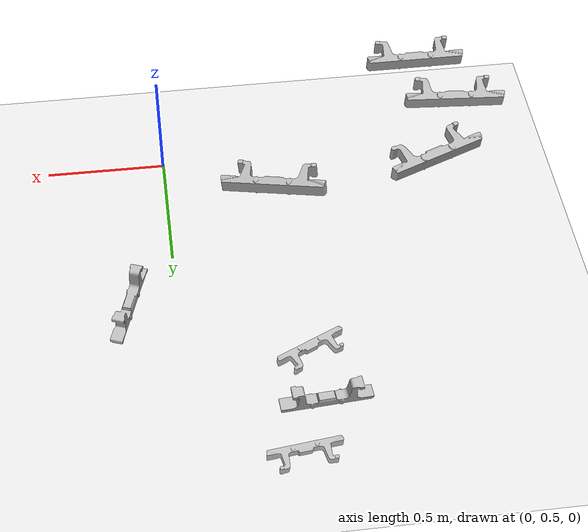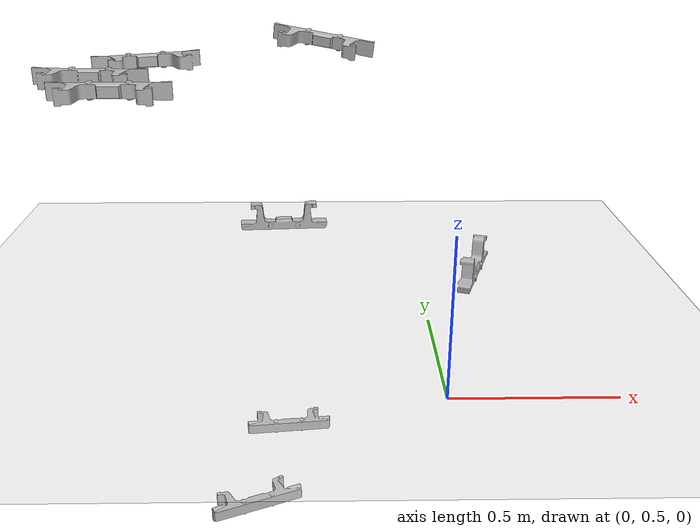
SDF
<sdf version="1.6">
 <world name="default">
  <light name="sun" type="directional">
   <pose>0 0 10 0 -0 0</pose>
   <diffuse>0.8 0.8 0.8 1</diffuse>
   <specular>0.2 0.2 0.2 1</specular>
   <attenuation>
    <range>1000</range>
    <constant>0.9</constant>
    <linear>0.01</linear>
    <quadratic>0.001</quadratic>
   </attenuation>
   <direction>-0.5 0.1 -0.9</direction>
  </light>
  <model name="ground_plane">
   <static>1</static>
   <link name="link">
    <collision name="collision">
     <geometry><plane><normal>0 0 1</normal><size>100 100</size></plane></geometry>
     <surface><friction><ode><mu>100</mu><mu2>50</mu2></ode></friction></surface>
    </collision>
    <visual name="visual">
     <cast_shadows>0</cast_shadows>
     <geometry><plane><normal>0 0 1</normal><size>100 100</size></plane></geometry>
     <material>
      <script><uri>file://media/materials/scripts/gazebo.material</uri><name>Gazebo/Grey</name></script>
     </material>
    </visual>
   </link>
  </model>
  <gravity>0 0 -9.8</gravity>
  <magnetic_field>6e-06 2.3e-05 -4.2e-05</magnetic_field>
  <atmosphere type="adiabatic"/>
  <physics name="default_physics" default="0" type="ode">
   <max_step_size>0.001</max_step_size>
   <real_time_factor>1</real_time_factor>
   <real_time_update_rate>1000</real_time_update_rate>
  </physics>
  <scene><ambient>0.4 0.4 0.4 1</ambient><background>0.7 0.7 0.7 1</background><shadows>1</shadows></scene>
  <audio><device>default</device></audio>
  <spherical_coordinates>
   <surface_model>EARTH_WGS84</surface_model>
   <latitude_deg>0</latitude_deg>
   <longitude_deg>0</longitude_deg>
   <elevation>0</elevation>
   <heading_deg>0</heading_deg>
  </spherical_coordinates>
  <model name="grelha">
   <pose>-0.320851 1.09092 0.020594 -3.1414 1.5e-05 0.414484</pose>
   <link name="link">
    <inertial>
     <mass>5</mass>
     <inertia><ixx>0.01</ixx><iyy>0.06</iyy><izz>0.07</izz><ixy>0</ixy><ixz>0</ixz><iyz>0</iyz></inertia>
    </inertial>
    <collision name="collision">
     <geometry><mesh><uri>model://grelha/meshes/grelha.stl</uri></mesh></geometry>
    </collision>
    <visual name="visual"><geometry><mesh><uri>model://grelha/meshes/grelha.stl</uri></mesh></geometry></visual>
   </link>
  </model>
  <model name="grelha_clone">
   <pose>-0.67641 1.42086 0.029403 -0.000197 4.4e-05 0.360575</pose>
   <link name="link">
    <inertial>
     <mass>5</mass>
     <inertia><ixx>0.01</ixx><iyy>0.06</iyy><izz>0.07</izz><ixy>0</ixy><ixz>0</ixz><iyz>0</iyz></inertia>
    </inertial>
    <collision name="collision">
     <geometry><mesh><uri>model://grelha/meshes/grelha.stl</uri></mesh></geometry>
    </collision>
    <visual name="visual"><geometry><mesh><uri>model://grelha/meshes/grelha.stl</uri></mesh></geometry></visual>
   </link>
  </model>
  <model name="grelha_clone_0">
   <pose>-0.141897 1.43947 0.053713 0.089137 0.13795 -0.293947</pose>
   <link name="link">
    <inertial>
     <mass>5</mass>
     <inertia><ixx>0.01</ixx><iyy>0.06</iyy><izz>0.07</izz><ixy>0</ixy><ixz>0</ixz><iyz>0</iyz></inertia>
    </inertial>
    <collision name="collision">
     <geometry><mesh><uri>model://grelha/meshes/grelha.stl</uri></mesh></geometry>
    </collision>
    <visual name="visual"><geometry><mesh><uri>model://grelha/meshes/grelha.stl</uri></mesh></geometry></visual>
   </link>
  </model>
  <model name="grelha_clone_1">
   <pose>-0.176018 0.983496 0.020211 -1.57073 -0 0.064681</pose>
   <link name="link">
    <inertial>
     <mass>5</mass>
     <inertia><ixx>0.01</ixx><iyy>0.06</iyy><izz>0.07</izz><ixy>0</ixy><ixz>0</ixz><iyz>0</iyz></inertia>
    </inertial>
    <collision name="collision">
     <geometry><mesh><uri>model://grelha/meshes/grelha.stl</uri></mesh></geometry>
    </collision>
    <visual name="visual"><geometry><mesh><uri>model://grelha/meshes/grelha.stl</uri></mesh></geometry></visual>
   </link>
  </model>
  <model name="grelha_clone_2">
   <pose>-0.657436 0.855793 0.029405 -8e-05 2.9e-05 0.00093</pose>
   <link name="link">
    <inertial>
     <mass>5</mass>
     <inertia><ixx>0.01</ixx><iyy>0.06</iyy><izz>0.07</izz><ixy>0</ixy><ixz>0</ixz><iyz>0</iyz></inertia>
    </inertial>
    <collision name="collision">
     <geometry><mesh><uri>model://grelha/meshes/grelha.stl</uri></mesh></geometry>
    </collision>
    <visual name="visual"><geometry><mesh><uri>model://grelha/meshes/grelha.stl</uri></mesh></geometry></visual>
   </link>
  </model>
  <model name="grelha_clone_3">
   <pose>-0.756639 1.04421 0.029405 -0.000179 -3.4e-05 -0.06562</pose>
   <link name="link">
    <inertial>
     <mass>5</mass>
     <inertia><ixx>0.01</ixx><iyy>0.06</iyy><izz>0.07</izz><ixy>0</ixy><ixz>0</ixz><iyz>0</iyz></inertia>
    </inertial>
    <collision name="collision">
     <geometry><mesh><uri>model://grelha/meshes/grelha.stl</uri></mesh></geometry>
    </collision>
    <visual name="visual"><geometry><mesh><uri>model://grelha/meshes/grelha.stl</uri></mesh></geometry></visual>
   </link>
  </model>
  <model name="grelha_clone_4">
   <pose>-0.660842 1.24584 0.020212 -1.5708 0 -1.9075</pose>
   <link name="link">
    <inertial>
     <mass>5</mass>
     <inertia><ixx>0.01</ixx><iyy>0.06</iyy><izz>0.07</izz><ixy>0</ixy><ixz>0</ixz><iyz>0</iyz></inertia>
    </inertial>
    <collision name="collision">
     <geometry><mesh><uri>model://grelha/meshes/grelha.stl</uri></mesh></geometry>
    </collision>
    <visual name="visual"><geometry><mesh><uri>model://grelha/meshes/grelha.stl</uri></mesh></geometry></visual>
   </link>
  </model>
  <model name="grelha_clone_5">
   <pose>-0.213643 1.52411 0.02059 3.14157 2.1e-05 0.110537</pose>
   <link name="link">
    <inertial>
     <mass>5</mass>
     <inertia><ixx>0.01</ixx><iyy>0.06</iyy><izz>0.07</izz><ixy>0</ixy><ixz>0</ixz><iyz>0</iyz></inertia>
    </inertial>
    <collision name="collision">
     <geometry><mesh><uri>model://grelha/meshes/grelha.stl</uri></mesh></geometry>
    </collision>
    <visual name="visual"><geometry><mesh><uri>model://grelha/meshes/grelha.stl</uri></mesh></geometry></visual>
   </link>
  </model>
 </world>
</sdf>
